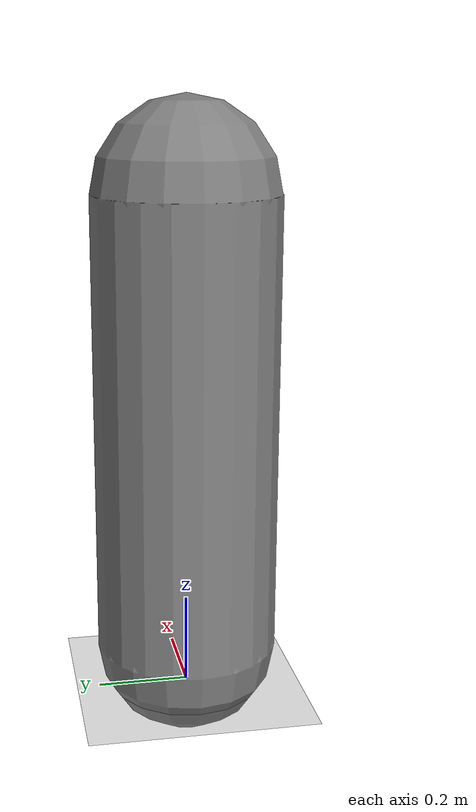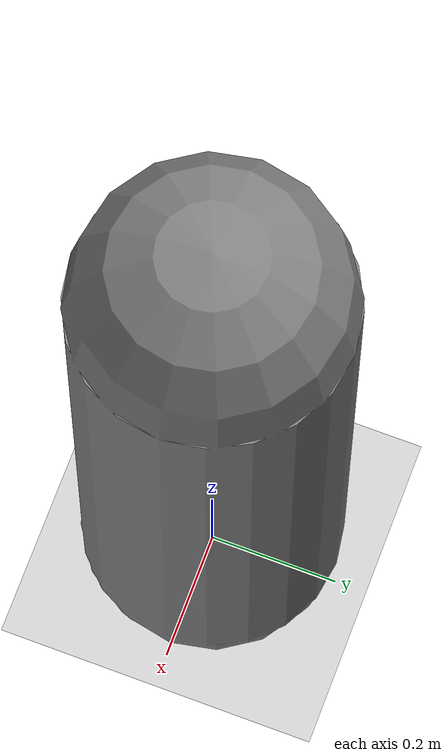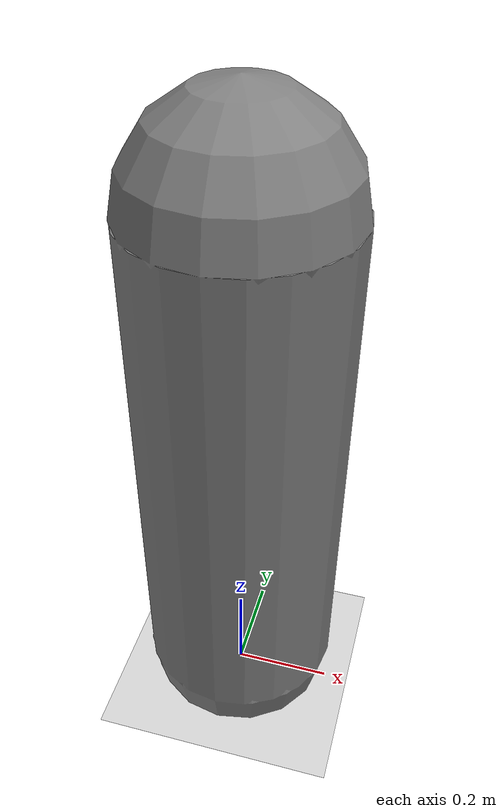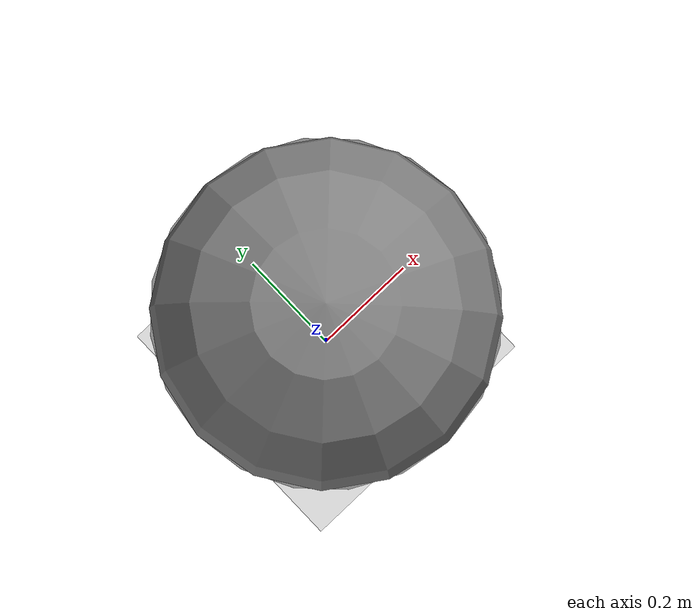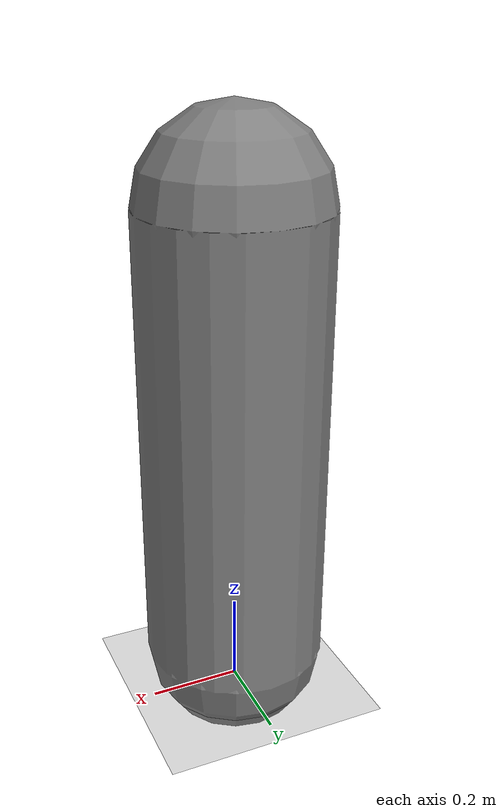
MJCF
<mujoco model="capsule_plane_upright_1">
            <option gravity="0 0 0" timestep="0.001"/>
            <worldbody>
                <geom name="floor" type="plane" size="10 10 0.1"/>
                <body name="cap" pos="0 0 0.6">
                    <joint type="free"/>
                    <geom type="capsule" size="0.2 0.5"/>
                </body>
            </worldbody>
        </mujoco>
